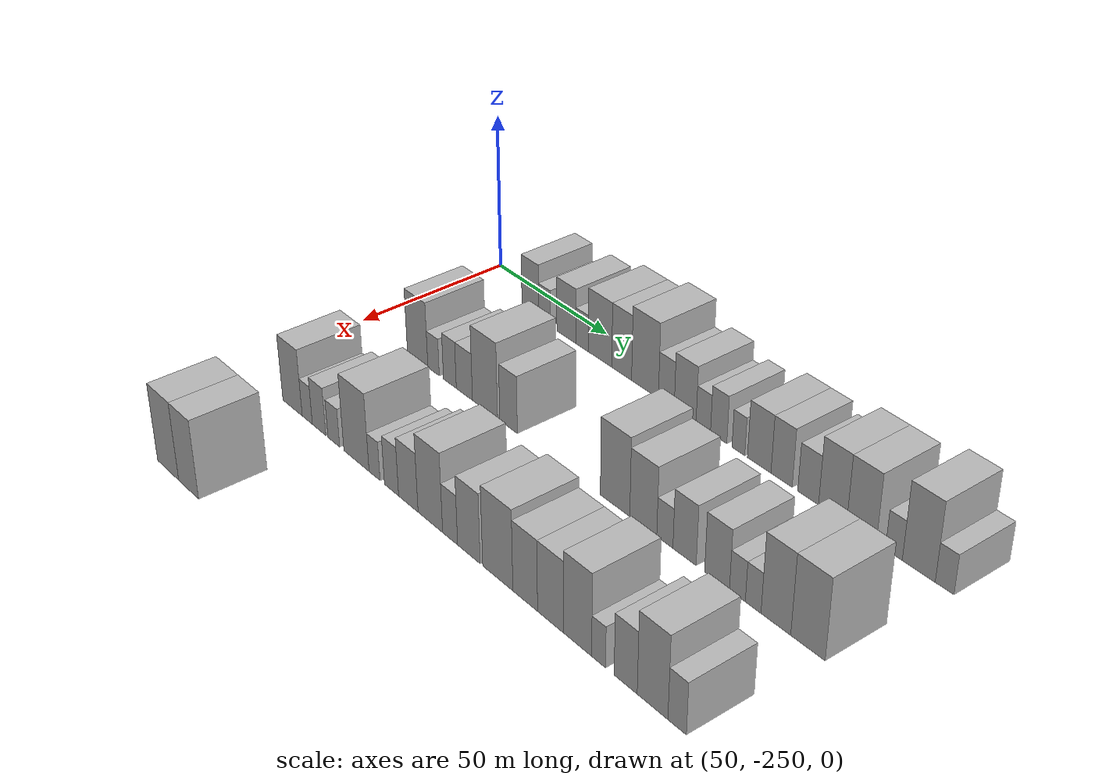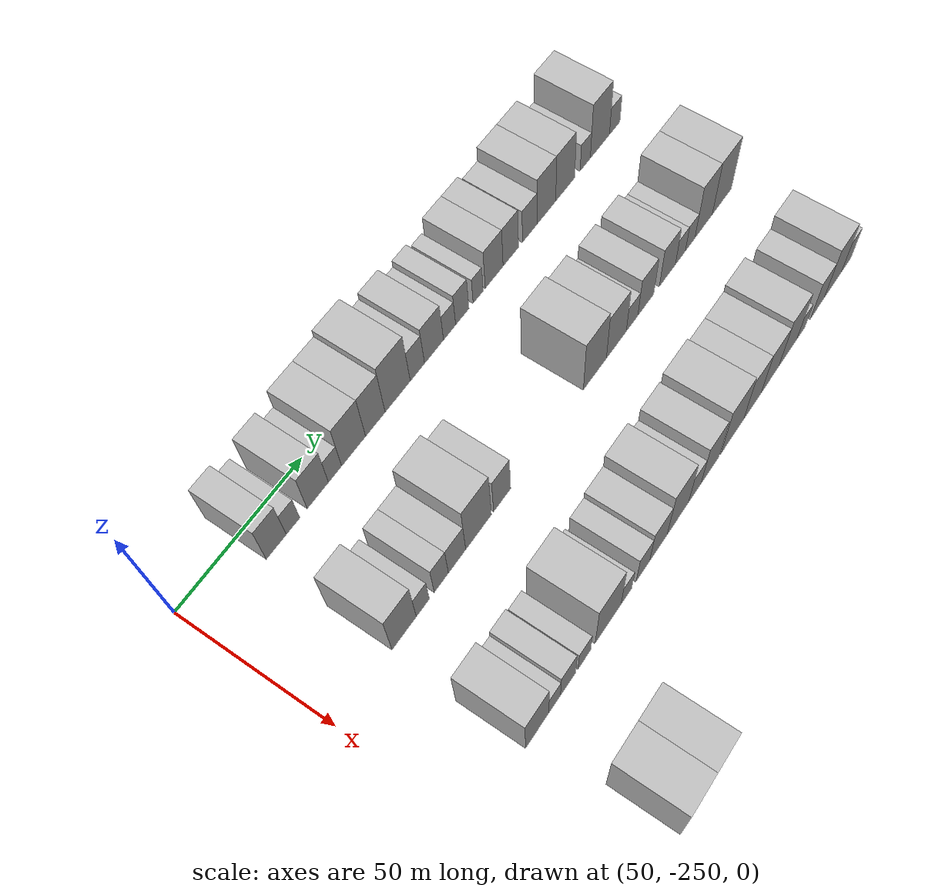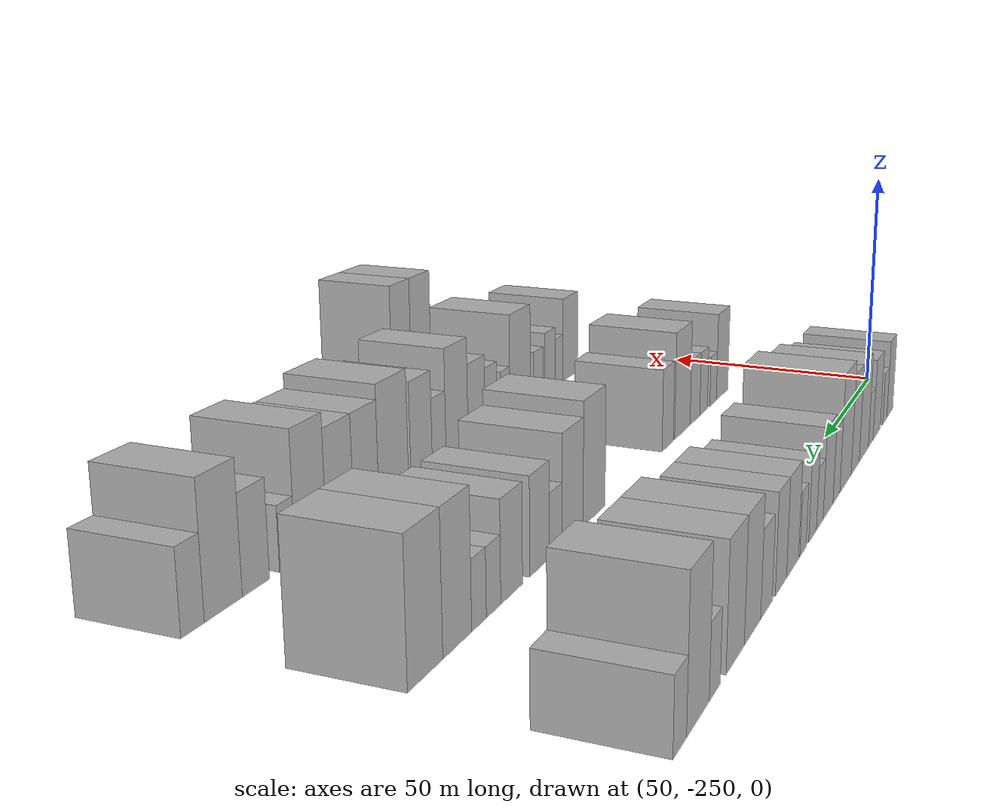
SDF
<sdf version="1.6">
 <world name="default">
  <model name="building_40">
   <static>1</static>
   <pose>50.0000 -222.8630 0 0.000000 0.000000 0.000000</pose>
   <link name="link">
    <pose>0 0 9.00 0 0 0</pose>
    <collision name="collision"><geometry><box><size>20.0000 7.9320 18.0000</size></box></geometry></collision>
    <visual name="visual">
     <cast_shadows>0</cast_shadows>
     <geometry><box><size>20.0000 7.9320 18.0000</size></box></geometry>
     <material>
      <script>
       <uri>model://HANNAS_wall/materials/scripts</uri>
       <uri>model://HANNAS_wall/materials/textures</uri>
       <name>vrc/HANNAS_wall</name>
      </script>
     </material>
    </visual>
   </link>
  </model>
  <model name="building_41">
   <static>1</static>
   <pose>50.0000 -216.1563 0 0.000000 0.000000 0.000000</pose>
   <link name="link">
    <pose>0 0 6.00 0 0 0</pose>
    <collision name="collision"><geometry><box><size>20.0000 5.4815 12.0000</size></box></geometry></collision>
    <visual name="visual">
     <cast_shadows>0</cast_shadows>
     <geometry><box><size>20.0000 5.4815 12.0000</size></box></geometry>
     <material>
      <script>
       <uri>model://HANNAS_wall/materials/scripts</uri>
       <uri>model://HANNAS_wall/materials/textures</uri>
       <name>vrc/HANNAS_wall</name>
      </script>
     </material>
    </visual>
   </link>
  </model>
  <model name="building_42">
   <static>1</static>
   <pose>50.0000 -206.0236 0 0.000000 0.000000 0.000000</pose>
   <link name="link">
    <pose>0 0 9.00 0 0 0</pose>
    <collision name="collision"><geometry><box><size>20.0000 8.7838 18.0000</size></box></geometry></collision>
    <visual name="visual">
     <cast_shadows>0</cast_shadows>
     <geometry><box><size>20.0000 8.7838 18.0000</size></box></geometry>
     <material>
      <script>
       <uri>model://HANNAS_wall/materials/scripts</uri>
       <uri>model://HANNAS_wall/materials/textures</uri>
       <name>vrc/HANNAS_wall</name>
      </script>
     </material>
    </visual>
   </link>
  </model>
  <model name="building_43">
   <static>1</static>
   <pose>50.0000 -198.8813 0 0.000000 0.000000 0.000000</pose>
   <link name="link">
    <pose>0 0 6.00 0 0 0</pose>
    <collision name="collision"><geometry><box><size>20.0000 5.5008 12.0000</size></box></geometry></collision>
    <visual name="visual">
     <cast_shadows>0</cast_shadows>
     <geometry><box><size>20.0000 5.5008 12.0000</size></box></geometry>
     <material>
      <script>
       <uri>model://HANNAS_wall/materials/scripts</uri>
       <uri>model://HANNAS_wall/materials/textures</uri>
       <name>vrc/HANNAS_wall</name>
      </script>
     </material>
    </visual>
   </link>
  </model>
  <model name="building_44">
   <static>1</static>
   <pose>50.0000 -190.9988 0 0.000000 0.000000 0.000000</pose>
   <link name="link">
    <pose>0 0 10.50 0 0 0</pose>
    <collision name="collision"><geometry><box><size>20.0000 10.2642 21.0000</size></box></geometry></collision>
    <visual name="visual">
     <cast_shadows>0</cast_shadows>
     <geometry><box><size>20.0000 10.2642 21.0000</size></box></geometry>
     <material>
      <script>
       <uri>model://HANNAS_wall/materials/scripts</uri>
       <uri>model://HANNAS_wall/materials/textures</uri>
       <name>vrc/HANNAS_wall</name>
      </script>
     </material>
    </visual>
   </link>
  </model>
  <model name="building_45">
   <static>1</static>
   <pose>50.0000 -181.6023 0 0.000000 0.000000 0.000000</pose>
   <link name="link">
    <pose>0 0 10.50 0 0 0</pose>
    <collision name="collision"><geometry><box><size>20.0000 8.5288 21.0000</size></box></geometry></collision>
    <visual name="visual">
     <cast_shadows>0</cast_shadows>
     <geometry><box><size>20.0000 8.5288 21.0000</size></box></geometry>
     <material>
      <script>
       <uri>model://HANNAS_wall/materials/scripts</uri>
       <uri>model://HANNAS_wall/materials/textures</uri>
       <name>vrc/HANNAS_wall</name>
      </script>
     </material>
    </visual>
   </link>
  </model>
  <model name="building_46">
   <static>1</static>
   <pose>50.0000 -171.7198 0 0.000000 0.000000 0.000000</pose>
   <link name="link">
    <pose>0 0 12.00 0 0 0</pose>
    <collision name="collision"><geometry><box><size>20.0000 11.2362 24.0000</size></box></geometry></collision>
    <visual name="visual">
     <cast_shadows>0</cast_shadows>
     <geometry><box><size>20.0000 11.2362 24.0000</size></box></geometry>
     <material>
      <script>
       <uri>model://HANNAS_wall/materials/scripts</uri>
       <uri>model://HANNAS_wall/materials/textures</uri>
       <name>vrc/HANNAS_wall</name>
      </script>
     </material>
    </visual>
   </link>
  </model>
  <model name="building_47">
   <static>1</static>
   <pose>50.0000 -162.8576 0 0.000000 0.000000 0.000000</pose>
   <link name="link">
    <pose>0 0 7.50 0 0 0</pose>
    <collision name="collision"><geometry><box><size>20.0000 6.4881 15.0000</size></box></geometry></collision>
    <visual name="visual">
     <cast_shadows>0</cast_shadows>
     <geometry><box><size>20.0000 6.4881 15.0000</size></box></geometry>
     <material>
      <script>
       <uri>model://HANNAS_wall/materials/scripts</uri>
       <uri>model://HANNAS_wall/materials/textures</uri>
       <name>vrc/HANNAS_wall</name>
      </script>
     </material>
    </visual>
   </link>
  </model>
  <model name="building_48">
   <static>1</static>
   <pose>50.0000 -155.2234 0 0.000000 0.000000 0.000000</pose>
   <link name="link">
    <pose>0 0 9.00 0 0 0</pose>
    <collision name="collision"><geometry><box><size>20.0000 8.7803 18.0000</size></box></geometry></collision>
    <visual name="visual">
     <cast_shadows>0</cast_shadows>
     <geometry><box><size>20.0000 8.7803 18.0000</size></box></geometry>
     <material>
      <script>
       <uri>model://HANNAS_wall/materials/scripts</uri>
       <uri>model://HANNAS_wall/materials/textures</uri>
       <name>vrc/HANNAS_wall</name>
      </script>
     </material>
    </visual>
   </link>
  </model>
  <model name="building_49">
   <static>1</static>
   <pose>50.0000 -147.9795 0 0.000000 0.000000 0.000000</pose>
   <link name="link">
    <pose>0 0 6.00 0 0 0</pose>
    <collision name="collision"><geometry><box><size>20.0000 5.7076 12.0000</size></box></geometry></collision>
    <visual name="visual">
     <cast_shadows>0</cast_shadows>
     <geometry><box><size>20.0000 5.7076 12.0000</size></box></geometry>
     <material>
      <script>
       <uri>model://HANNAS_wall/materials/scripts</uri>
       <uri>model://HANNAS_wall/materials/textures</uri>
       <name>vrc/HANNAS_wall</name>
      </script>
     </material>
    </visual>
   </link>
  </model>
  <model name="building_50">
   <static>1</static>
   <pose>50.0000 -141.9601 0 0.000000 0.000000 0.000000</pose>
   <link name="link">
    <pose>0 0 7.50 0 0 0</pose>
    <collision name="collision"><geometry><box><size>20.0000 6.3311 15.0000</size></box></geometry></collision>
    <visual name="visual">
     <cast_shadows>0</cast_shadows>
     <geometry><box><size>20.0000 6.3311 15.0000</size></box></geometry>
     <material>
      <script>
       <uri>model://HANNAS_wall/materials/scripts</uri>
       <uri>model://HANNAS_wall/materials/textures</uri>
       <name>vrc/HANNAS_wall</name>
      </script>
     </material>
    </visual>
   </link>
  </model>
  <model name="building_51">
   <static>1</static>
   <pose>50.0000 -134.3684 0 0.000000 0.000000 0.000000</pose>
   <link name="link">
    <pose>0 0 6.00 0 0 0</pose>
    <collision name="collision"><geometry><box><size>20.0000 4.8523 12.0000</size></box></geometry></collision>
    <visual name="visual">
     <cast_shadows>0</cast_shadows>
     <geometry><box><size>20.0000 4.8523 12.0000</size></box></geometry>
     <material>
      <script>
       <uri>model://HANNAS_wall/materials/scripts</uri>
       <uri>model://HANNAS_wall/materials/textures</uri>
       <name>vrc/HANNAS_wall</name>
      </script>
     </material>
    </visual>
   </link>
  </model>
  <model name="building_52">
   <static>1</static>
   <pose>50.0000 -126.5529 0 0.000000 0.000000 0.000000</pose>
   <link name="link">
    <pose>0 0 9.00 0 0 0</pose>
    <collision name="collision"><geometry><box><size>20.0000 8.7786 18.0000</size></box></geometry></collision>
    <visual name="visual">
     <cast_shadows>0</cast_shadows>
     <geometry><box><size>20.0000 8.7786 18.0000</size></box></geometry>
     <material>
      <script>
       <uri>model://HANNAS_wall/materials/scripts</uri>
       <uri>model://HANNAS_wall/materials/textures</uri>
       <name>vrc/HANNAS_wall</name>
      </script>
     </material>
    </visual>
   </link>
  </model>
  <model name="building_53">
   <static>1</static>
   <pose>50.0000 -118.3003 0 0.000000 0.000000 0.000000</pose>
   <link name="link">
    <pose>0 0 9.00 0 0 0</pose>
    <collision name="collision"><geometry><box><size>20.0000 7.7267 18.0000</size></box></geometry></collision>
    <visual name="visual">
     <cast_shadows>0</cast_shadows>
     <geometry><box><size>20.0000 7.7267 18.0000</size></box></geometry>
     <material>
      <script>
       <uri>model://HANNAS_wall/materials/scripts</uri>
       <uri>model://HANNAS_wall/materials/textures</uri>
       <name>vrc/HANNAS_wall</name>
      </script>
     </material>
    </visual>
   </link>
  </model>
  <model name="building_54">
   <static>1</static>
   <pose>50.0000 -108.7481 0 0.000000 0.000000 0.000000</pose>
   <link name="link">
    <pose>0 0 7.50 0 0 0</pose>
    <collision name="collision"><geometry><box><size>20.0000 7.3778 15.0000</size></box></geometry></collision>
    <visual name="visual">
     <cast_shadows>0</cast_shadows>
     <geometry><box><size>20.0000 7.3778 15.0000</size></box></geometry>
     <material>
      <script>
       <uri>model://HANNAS_wall/materials/scripts</uri>
       <uri>model://HANNAS_wall/materials/textures</uri>
       <name>vrc/HANNAS_wall</name>
      </script>
     </material>
    </visual>
   </link>
  </model>
  <model name="building_55">
   <static>1</static>
   <pose>50.0000 -100.1763 0 0.000000 0.000000 0.000000</pose>
   <link name="link">
    <pose>0 0 10.50 0 0 0</pose>
    <collision name="collision"><geometry><box><size>20.0000 9.7657 21.0000</size></box></geometry></collision>
    <visual name="visual">
     <cast_shadows>0</cast_shadows>
     <geometry><box><size>20.0000 9.7657 21.0000</size></box></geometry>
     <material>
      <script>
       <uri>model://HANNAS_wall/materials/scripts</uri>
       <uri>model://HANNAS_wall/materials/textures</uri>
       <name>vrc/HANNAS_wall</name>
      </script>
     </material>
    </visual>
   </link>
  </model>
  <model name="building_56">
   <static>1</static>
   <pose>50.0000 -90.2900 0 0.000000 0.000000 0.000000</pose>
   <link name="link">
    <pose>0 0 10.50 0 0 0</pose>
    <collision name="collision"><geometry><box><size>20.0000 10.0070 21.0000</size></box></geometry></collision>
    <visual name="visual">
     <cast_shadows>0</cast_shadows>
     <geometry><box><size>20.0000 10.0070 21.0000</size></box></geometry>
     <material>
      <script>
       <uri>model://HANNAS_wall/materials/scripts</uri>
       <uri>model://HANNAS_wall/materials/textures</uri>
       <name>vrc/HANNAS_wall</name>
      </script>
     </material>
    </visual>
   </link>
  </model>
  <model name="building_57">
   <static>1</static>
   <pose>50.0000 -79.5370 0 0.000000 0.000000 0.000000</pose>
   <link name="link">
    <pose>0 0 6.00 0 0 0</pose>
    <collision name="collision"><geometry><box><size>20.0000 5.4991 12.0000</size></box></geometry></collision>
    <visual name="visual">
     <cast_shadows>0</cast_shadows>
     <geometry><box><size>20.0000 5.4991 12.0000</size></box></geometry>
     <material>
      <script>
       <uri>model://HANNAS_wall/materials/scripts</uri>
       <uri>model://HANNAS_wall/materials/textures</uri>
       <name>vrc/HANNAS_wall</name>
      </script>
     </material>
    </visual>
   </link>
  </model>
  <model name="building_58">
   <static>1</static>
   <pose>50.0000 -71.5203 0 0.000000 0.000000 0.000000</pose>
   <link name="link">
    <pose>0 0 12.00 0 0 0</pose>
    <collision name="collision"><geometry><box><size>20.0000 10.5342 24.0000</size></box></geometry></collision>
    <visual name="visual">
     <cast_shadows>0</cast_shadows>
     <geometry><box><size>20.0000 10.5342 24.0000</size></box></geometry>
     <material>
      <script>
       <uri>model://HANNAS_wall/materials/scripts</uri>
       <uri>model://HANNAS_wall/materials/textures</uri>
       <name>vrc/HANNAS_wall</name>
      </script>
     </material>
    </visual>
   </link>
  </model>
  <model name="building_59">
   <static>1</static>
   <pose>50.0000 -63.3227 0 0.000000 0.000000 0.000000</pose>
   <link name="link">
    <pose>0 0 6.00 0 0 0</pose>
    <collision name="collision"><geometry><box><size>20.0000 5.8610 12.0000</size></box></geometry></collision>
    <visual name="visual">
     <cast_shadows>0</cast_shadows>
     <geometry><box><size>20.0000 5.8610 12.0000</size></box></geometry>
     <material>
      <script>
       <uri>model://HANNAS_wall/materials/scripts</uri>
       <uri>model://HANNAS_wall/materials/textures</uri>
       <name>vrc/HANNAS_wall</name>
      </script>
     </material>
    </visual>
   </link>
  </model>
  <model name="building_187">
   <static>1</static>
   <pose>90.0000 -222.9014 0 0.000000 0.000000 0.000000</pose>
   <link name="link">
    <pose>0 0 10.50 0 0 0</pose>
    <collision name="collision"><geometry><box><size>20.0000 9.9469 21.0000</size></box></geometry></collision>
    <visual name="visual">
     <cast_shadows>0</cast_shadows>
     <geometry><box><size>20.0000 9.9469 21.0000</size></box></geometry>
     <material>
      <script>
       <uri>model://HANNAS_wall/materials/scripts</uri>
       <uri>model://HANNAS_wall/materials/textures</uri>
       <name>vrc/HANNAS_wall</name>
      </script>
     </material>
    </visual>
   </link>
  </model>
  <model name="building_188">
   <static>1</static>
   <pose>90.0000 -215.1962 0 0.000000 0.000000 0.000000</pose>
   <link name="link">
    <pose>0 0 6.00 0 0 0</pose>
    <collision name="collision"><geometry><box><size>20.0000 5.4635 12.0000</size></box></geometry></collision>
    <visual name="visual">
     <cast_shadows>0</cast_shadows>
     <geometry><box><size>20.0000 5.4635 12.0000</size></box></geometry>
     <material>
      <script>
       <uri>model://HANNAS_wall/materials/scripts</uri>
       <uri>model://HANNAS_wall/materials/textures</uri>
       <name>vrc/HANNAS_wall</name>
      </script>
     </material>
    </visual>
   </link>
  </model>
  <model name="building_189">
   <static>1</static>
   <pose>90.0000 -207.4547 0 0.000000 0.000000 0.000000</pose>
   <link name="link">
    <pose>0 0 7.50 0 0 0</pose>
    <collision name="collision"><geometry><box><size>20.0000 6.0195 15.0000</size></box></geometry></collision>
    <visual name="visual">
     <cast_shadows>0</cast_shadows>
     <geometry><box><size>20.0000 6.0195 15.0000</size></box></geometry>
     <material>
      <script>
       <uri>model://HANNAS_wall/materials/scripts</uri>
       <uri>model://HANNAS_wall/materials/textures</uri>
       <name>vrc/HANNAS_wall</name>
      </script>
     </material>
    </visual>
   </link>
  </model>
  <model name="building_190">
   <static>1</static>
   <pose>90.0000 -200.7023 0 0.000000 0.000000 0.000000</pose>
   <link name="link">
    <pose>0 0 7.50 0 0 0</pose>
    <collision name="collision"><geometry><box><size>20.0000 7.4853 15.0000</size></box></geometry></collision>
    <visual name="visual">
     <cast_shadows>0</cast_shadows>
     <geometry><box><size>20.0000 7.4853 15.0000</size></box></geometry>
     <material>
      <script>
       <uri>model://HANNAS_wall/materials/scripts</uri>
       <uri>model://HANNAS_wall/materials/textures</uri>
       <name>vrc/HANNAS_wall</name>
      </script>
     </material>
    </visual>
   </link>
  </model>
  <model name="building_191">
   <static>1</static>
   <pose>90.0000 -191.3024 0 0.000000 0.000000 0.000000</pose>
   <link name="link">
    <pose>0 0 12.00 0 0 0</pose>
    <collision name="collision"><geometry><box><size>20.0000 11.3145 24.0000</size></box></geometry></collision>
    <visual name="visual">
     <cast_shadows>0</cast_shadows>
     <geometry><box><size>20.0000 11.3145 24.0000</size></box></geometry>
     <material>
      <script>
       <uri>model://HANNAS_wall/materials/scripts</uri>
       <uri>model://HANNAS_wall/materials/textures</uri>
       <name>vrc/HANNAS_wall</name>
      </script>
     </material>
    </visual>
   </link>
  </model>
  <model name="building_192">
   <static>1</static>
   <pose>90.0000 -180.8074 0 0.000000 0.000000 0.000000</pose>
   <link name="link">
    <pose>0 0 9.00 0 0 0</pose>
    <collision name="collision"><geometry><box><size>20.0000 7.6755 18.0000</size></box></geometry></collision>
    <visual name="visual">
     <cast_shadows>0</cast_shadows>
     <geometry><box><size>20.0000 7.6755 18.0000</size></box></geometry>
     <material>
      <script>
       <uri>model://HANNAS_wall/materials/scripts</uri>
       <uri>model://HANNAS_wall/materials/textures</uri>
       <name>vrc/HANNAS_wall</name>
      </script>
     </material>
    </visual>
   </link>
  </model>
  <model name="building_193">
   <static>1</static>
   <pose>90.0000 -136.7988 0 0.000000 0.000000 0.000000</pose>
   <link name="link">
    <pose>0 0 12.00 0 0 0</pose>
    <collision name="collision"><geometry><box><size>20.0000 11.4472 24.0000</size></box></geometry></collision>
    <visual name="visual">
     <cast_shadows>0</cast_shadows>
     <geometry><box><size>20.0000 11.4472 24.0000</size></box></geometry>
     <material>
      <script>
       <uri>model://HANNAS_wall/materials/scripts</uri>
       <uri>model://HANNAS_wall/materials/textures</uri>
       <name>vrc/HANNAS_wall</name>
      </script>
     </material>
    </visual>
   </link>
  </model>
  <model name="building_194">
   <static>1</static>
   <pose>90.0000 -125.9730 0 0.000000 0.000000 0.000000</pose>
   <link name="link">
    <pose>0 0 10.50 0 0 0</pose>
    <collision name="collision"><geometry><box><size>20.0000 10.2042 21.0000</size></box></geometry></collision>
    <visual name="visual">
     <cast_shadows>0</cast_shadows>
     <geometry><box><size>20.0000 10.2042 21.0000</size></box></geometry>
     <material>
      <script>
       <uri>model://HANNAS_wall/materials/scripts</uri>
       <uri>model://HANNAS_wall/materials/textures</uri>
       <name>vrc/HANNAS_wall</name>
      </script>
     </material>
    </visual>
   </link>
  </model>
  <model name="building_195">
   <static>1</static>
   <pose>90.0000 -117.8890 0 0.000000 0.000000 0.000000</pose>
   <link name="link">
    <pose>0 0 6.00 0 0 0</pose>
    <collision name="collision"><geometry><box><size>20.0000 5.9638 12.0000</size></box></geometry></collision>
    <visual name="visual">
     <cast_shadows>0</cast_shadows>
     <geometry><box><size>20.0000 5.9638 12.0000</size></box></geometry>
     <material>
      <script>
       <uri>model://HANNAS_wall/materials/scripts</uri>
       <uri>model://HANNAS_wall/materials/textures</uri>
       <name>vrc/HANNAS_wall</name>
      </script>
     </material>
    </visual>
   </link>
  </model>
  <model name="building_196">
   <static>1</static>
   <pose>90.0000 -110.6893 0 0.000000 0.000000 0.000000</pose>
   <link name="link">
    <pose>0 0 9.00 0 0 0</pose>
    <collision name="collision"><geometry><box><size>20.0000 8.4355 18.0000</size></box></geometry></collision>
    <visual name="visual">
     <cast_shadows>0</cast_shadows>
     <geometry><box><size>20.0000 8.4355 18.0000</size></box></geometry>
     <material>
      <script>
       <uri>model://HANNAS_wall/materials/scripts</uri>
       <uri>model://HANNAS_wall/materials/textures</uri>
       <name>vrc/HANNAS_wall</name>
      </script>
     </material>
    </visual>
   </link>
  </model>
  <model name="building_197">
   <static>1</static>
   <pose>90.0000 -99.1332 0 0.000000 0.000000 0.000000</pose>
   <link name="link">
    <pose>0 0 9.00 0 0 0</pose>
    <collision name="collision"><geometry><box><size>20.0000 8.6768 18.0000</size></box></geometry></collision>
    <visual name="visual">
     <cast_shadows>0</cast_shadows>
     <geometry><box><size>20.0000 8.6768 18.0000</size></box></geometry>
     <material>
      <script>
       <uri>model://HANNAS_wall/materials/scripts</uri>
       <uri>model://HANNAS_wall/materials/textures</uri>
       <name>vrc/HANNAS_wall</name>
      </script>
     </material>
    </visual>
   </link>
  </model>
  <model name="building_198">
   <static>1</static>
   <pose>90.0000 -92.0664 0 0.000000 0.000000 0.000000</pose>
   <link name="link">
    <pose>0 0 6.00 0 0 0</pose>
    <collision name="collision"><geometry><box><size>20.0000 5.4568 12.0000</size></box></geometry></collision>
    <visual name="visual">
     <cast_shadows>0</cast_shadows>
     <geometry><box><size>20.0000 5.4568 12.0000</size></box></geometry>
     <material>
      <script>
       <uri>model://HANNAS_wall/materials/scripts</uri>
       <uri>model://HANNAS_wall/materials/textures</uri>
       <name>vrc/HANNAS_wall</name>
      </script>
     </material>
    </visual>
   </link>
  </model>
  <model name="building_199">
   <static>1</static>
   <pose>90.0000 -86.6915 0 0.000000 0.000000 0.000000</pose>
   <link name="link">
    <pose>0 0 6.00 0 0 0</pose>
    <collision name="collision"><geometry><box><size>20.0000 5.2930 12.0000</size></box></geometry></collision>
    <visual name="visual">
     <cast_shadows>0</cast_shadows>
     <geometry><box><size>20.0000 5.2930 12.0000</size></box></geometry>
     <material>
      <script>
       <uri>model://HANNAS_wall/materials/scripts</uri>
       <uri>model://HANNAS_wall/materials/textures</uri>
       <name>vrc/HANNAS_wall</name>
      </script>
     </material>
    </visual>
   </link>
  </model>
  <model name="building_200">
   <static>1</static>
   <pose>90.0000 -79.1349 0 0.000000 0.000000 0.000000</pose>
   <link name="link">
    <pose>0 0 12.00 0 0 0</pose>
    <collision name="collision"><geometry><box><size>20.0000 9.8201 24.0000</size></box></geometry></collision>
    <visual name="visual">
     <cast_shadows>0</cast_shadows>
     <geometry><box><size>20.0000 9.8201 24.0000</size></box></geometry>
     <material>
      <script>
       <uri>model://HANNAS_wall/materials/scripts</uri>
       <uri>model://HANNAS_wall/materials/textures</uri>
       <name>vrc/HANNAS_wall</name>
      </script>
     </material>
    </visual>
   </link>
  </model>
  <model name="building_201">
   <static>1</static>
   <pose>90.0000 -68.7197 0 0.000000 0.000000 0.000000</pose>
   <link name="link">
    <pose>0 0 12.00 0 0 0</pose>
    <collision name="collision"><geometry><box><size>20.0000 11.0104 24.0000</size></box></geometry></collision>
    <visual name="visual">
     <cast_shadows>0</cast_shadows>
     <geometry><box><size>20.0000 11.0104 24.0000</size></box></geometry>
     <material>
      <script>
       <uri>model://HANNAS_wall/materials/scripts</uri>
       <uri>model://HANNAS_wall/materials/textures</uri>
       <name>vrc/HANNAS_wall</name>
      </script>
     </material>
    </visual>
   </link>
  </model>
  <model name="building_316">
   <static>1</static>
   <pose>130.0000 -224.4772 0 0.000000 0.000000 0.000000</pose>
   <link name="link">
    <pose>0 0 10.50 0 0 0</pose>
    <collision name="collision"><geometry><box><size>20.0000 9.7715 21.0000</size></box></geometry></collision>
    <visual name="visual">
     <cast_shadows>0</cast_shadows>
     <geometry><box><size>20.0000 9.7715 21.0000</size></box></geometry>
     <material>
      <script>
       <uri>model://HANNAS_wall/materials/scripts</uri>
       <uri>model://HANNAS_wall/materials/textures</uri>
       <name>vrc/HANNAS_wall</name>
      </script>
     </material>
    </visual>
   </link>
  </model>
  <model name="building_317">
   <static>1</static>
   <pose>130.0000 -217.0704 0 0.000000 0.000000 0.000000</pose>
   <link name="link">
    <pose>0 0 6.00 0 0 0</pose>
    <collision name="collision"><geometry><box><size>20.0000 5.0422 12.0000</size></box></geometry></collision>
    <visual name="visual">
     <cast_shadows>0</cast_shadows>
     <geometry><box><size>20.0000 5.0422 12.0000</size></box></geometry>
     <material>
      <script>
       <uri>model://HANNAS_wall/materials/scripts</uri>
       <uri>model://HANNAS_wall/materials/textures</uri>
       <name>vrc/HANNAS_wall</name>
      </script>
     </material>
    </visual>
   </link>
  </model>
  <model name="building_318">
   <static>1</static>
   <pose>130.0000 -211.2280 0 0.000000 0.000000 0.000000</pose>
   <link name="link">
    <pose>0 0 7.50 0 0 0</pose>
    <collision name="collision"><geometry><box><size>20.0000 6.6426 15.0000</size></box></geometry></collision>
    <visual name="visual">
     <cast_shadows>0</cast_shadows>
     <geometry><box><size>20.0000 6.6426 15.0000</size></box></geometry>
     <material>
      <script>
       <uri>model://HANNAS_wall/materials/scripts</uri>
       <uri>model://HANNAS_wall/materials/textures</uri>
       <name>vrc/HANNAS_wall</name>
      </script>
     </material>
    </visual>
   </link>
  </model>
  <model name="building_319">
   <static>1</static>
   <pose>130.0000 -204.0711 0 0.000000 0.000000 0.000000</pose>
   <link name="link">
    <pose>0 0 6.00 0 0 0</pose>
    <collision name="collision"><geometry><box><size>20.0000 5.6711 12.0000</size></box></geometry></collision>
    <visual name="visual">
     <cast_shadows>0</cast_shadows>
     <geometry><box><size>20.0000 5.6711 12.0000</size></box></geometry>
     <material>
      <script>
       <uri>model://HANNAS_wall/materials/scripts</uri>
       <uri>model://HANNAS_wall/materials/textures</uri>
       <name>vrc/HANNAS_wall</name>
      </script>
     </material>
    </visual>
   </link>
  </model>
  <model name="building_320">
   <static>1</static>
   <pose>130.0000 -193.3416 0 0.000000 0.000000 0.000000</pose>
   <link name="link">
    <pose>0 0 12.00 0 0 0</pose>
    <collision name="collision"><geometry><box><size>20.0000 11.7881 24.0000</size></box></geometry></collision>
    <visual name="visual">
     <cast_shadows>0</cast_shadows>
     <geometry><box><size>20.0000 11.7881 24.0000</size></box></geometry>
     <material>
      <script>
       <uri>model://HANNAS_wall/materials/scripts</uri>
       <uri>model://HANNAS_wall/materials/textures</uri>
       <name>vrc/HANNAS_wall</name>
      </script>
     </material>
    </visual>
   </link>
  </model>
  <model name="building_321">
   <static>1</static>
   <pose>130.0000 -184.9267 0 0.000000 0.000000 0.000000</pose>
   <link name="link">
    <pose>0 0 6.00 0 0 0</pose>
    <collision name="collision"><geometry><box><size>20.0000 5.0417 12.0000</size></box></geometry></collision>
    <visual name="visual">
     <cast_shadows>0</cast_shadows>
     <geometry><box><size>20.0000 5.0417 12.0000</size></box></geometry>
     <material>
      <script>
       <uri>model://HANNAS_wall/materials/scripts</uri>
       <uri>model://HANNAS_wall/materials/textures</uri>
       <name>vrc/HANNAS_wall</name>
      </script>
     </material>
    </visual>
   </link>
  </model>
  <model name="building_322">
   <static>1</static>
   <pose>130.0000 -177.2299 0 0.000000 0.000000 0.000000</pose>
   <link name="link">
    <pose>0 0 7.50 0 0 0</pose>
    <collision name="collision"><geometry><box><size>20.0000 6.3518 15.0000</size></box></geometry></collision>
    <visual name="visual">
     <cast_shadows>0</cast_shadows>
     <geometry><box><size>20.0000 6.3518 15.0000</size></box></geometry>
     <material>
      <script>
       <uri>model://HANNAS_wall/materials/scripts</uri>
       <uri>model://HANNAS_wall/materials/textures</uri>
       <name>vrc/HANNAS_wall</name>
      </script>
     </material>
    </visual>
   </link>
  </model>
  <model name="building_323">
   <static>1</static>
   <pose>130.0000 -169.7824 0 0.000000 0.000000 0.000000</pose>
   <link name="link">
    <pose>0 0 9.00 0 0 0</pose>
    <collision name="collision"><geometry><box><size>20.0000 8.5433 18.0000</size></box></geometry></collision>
    <visual name="visual">
     <cast_shadows>0</cast_shadows>
     <geometry><box><size>20.0000 8.5433 18.0000</size></box></geometry>
     <material>
      <script>
       <uri>model://HANNAS_wall/materials/scripts</uri>
       <uri>model://HANNAS_wall/materials/textures</uri>
       <name>vrc/HANNAS_wall</name>
      </script>
     </material>
    </visual>
   </link>
  </model>
  <model name="building_324">
   <static>1</static>
   <pose>130.0000 -160.2518 0 0.000000 0.000000 0.000000</pose>
   <link name="link">
    <pose>0 0 12.00 0 0 0</pose>
    <collision name="collision"><geometry><box><size>20.0000 10.5179 24.0000</size></box></geometry></collision>
    <visual name="visual">
     <cast_shadows>0</cast_shadows>
     <geometry><box><size>20.0000 10.5179 24.0000</size></box></geometry>
     <material>
      <script>
       <uri>model://HANNAS_wall/materials/scripts</uri>
       <uri>model://HANNAS_wall/materials/textures</uri>
       <name>vrc/HANNAS_wall</name>
      </script>
     </material>
    </visual>
   </link>
  </model>
  <model name="building_325">
   <static>1</static>
   <pose>130.0000 -151.8718 0 0.000000 0.000000 0.000000</pose>
   <link name="link">
    <pose>0 0 7.50 0 0 0</pose>
    <collision name="collision"><geometry><box><size>20.0000 6.2420 15.0000</size></box></geometry></collision>
    <visual name="visual">
     <cast_shadows>0</cast_shadows>
     <geometry><box><size>20.0000 6.2420 15.0000</size></box></geometry>
     <material>
      <script>
       <uri>model://HANNAS_wall/materials/scripts</uri>
       <uri>model://HANNAS_wall/materials/textures</uri>
       <name>vrc/HANNAS_wall</name>
      </script>
     </material>
    </visual>
   </link>
  </model>
  <model name="building_326">
   <static>1</static>
   <pose>130.0000 -144.1343 0 0.000000 0.000000 0.000000</pose>
   <link name="link">
    <pose>0 0 10.50 0 0 0</pose>
    <collision name="collision"><geometry><box><size>20.0000 9.2330 21.0000</size></box></geometry></collision>
    <visual name="visual">
     <cast_shadows>0</cast_shadows>
     <geometry><box><size>20.0000 9.2330 21.0000</size></box></geometry>
     <material>
      <script>
       <uri>model://HANNAS_wall/materials/scripts</uri>
       <uri>model://HANNAS_wall/materials/textures</uri>
       <name>vrc/HANNAS_wall</name>
      </script>
     </material>
    </visual>
   </link>
  </model>
  <model name="building_327">
   <static>1</static>
   <pose>130.0000 -132.5599 0 0.000000 0.000000 0.000000</pose>
   <link name="link">
    <pose>0 0 12.00 0 0 0</pose>
    <collision name="collision"><geometry><box><size>20.0000 11.9157 24.0000</size></box></geometry></collision>
    <visual name="visual">
     <cast_shadows>0</cast_shadows>
     <geometry><box><size>20.0000 11.9157 24.0000</size></box></geometry>
     <material>
      <script>
       <uri>model://HANNAS_wall/materials/scripts</uri>
       <uri>model://HANNAS_wall/materials/textures</uri>
       <name>vrc/HANNAS_wall</name>
      </script>
     </material>
    </visual>
   </link>
  </model>
  <model name="building_328">
   <static>1</static>
   <pose>130.0000 -121.8762 0 0.000000 0.000000 0.000000</pose>
   <link name="link">
    <pose>0 0 10.50 0 0 0</pose>
    <collision name="collision"><geometry><box><size>20.0000 9.4518 21.0000</size></box></geometry></collision>
    <visual name="visual">
     <cast_shadows>0</cast_shadows>
     <geometry><box><size>20.0000 9.4518 21.0000</size></box></geometry>
     <material>
      <script>
       <uri>model://HANNAS_wall/materials/scripts</uri>
       <uri>model://HANNAS_wall/materials/textures</uri>
       <name>vrc/HANNAS_wall</name>
      </script>
     </material>
    </visual>
   </link>
  </model>
  <model name="building_329">
   <static>1</static>
   <pose>130.0000 -112.3474 0 0.000000 0.000000 0.000000</pose>
   <link name="link">
    <pose>0 0 10.50 0 0 0</pose>
    <collision name="collision"><geometry><box><size>20.0000 9.6057 21.0000</size></box></geometry></collision>
    <visual name="visual">
     <cast_shadows>0</cast_shadows>
     <geometry><box><size>20.0000 9.6057 21.0000</size></box></geometry>
     <material>
      <script>
       <uri>model://HANNAS_wall/materials/scripts</uri>
       <uri>model://HANNAS_wall/materials/textures</uri>
       <name>vrc/HANNAS_wall</name>
      </script>
     </material>
    </visual>
   </link>
  </model>
  <model name="building_330">
   <static>1</static>
   <pose>130.0000 -102.4316 0 0.000000 0.000000 0.000000</pose>
   <link name="link">
    <pose>0 0 12.00 0 0 0</pose>
    <collision name="collision"><geometry><box><size>20.0000 10.2258 24.0000</size></box></geometry></collision>
    <visual name="visual">
     <cast_shadows>0</cast_shadows>
     <geometry><box><size>20.0000 10.2258 24.0000</size></box></geometry>
     <material>
      <script>
       <uri>model://HANNAS_wall/materials/scripts</uri>
       <uri>model://HANNAS_wall/materials/textures</uri>
       <name>vrc/HANNAS_wall</name>
      </script>
     </material>
    </visual>
   </link>
  </model>
  <model name="building_331">
   <static>1</static>
   <pose>130.0000 -94.8656 0 0.000000 0.000000 0.000000</pose>
   <link name="link">
    <pose>0 0 6.00 0 0 0</pose>
    <collision name="collision"><geometry><box><size>20.0000 4.9062 12.0000</size></box></geometry></collision>
    <visual name="visual">
     <cast_shadows>0</cast_shadows>
     <geometry><box><size>20.0000 4.9062 12.0000</size></box></geometry>
     <material>
      <script>
       <uri>model://HANNAS_wall/materials/scripts</uri>
       <uri>model://HANNAS_wall/materials/textures</uri>
       <name>vrc/HANNAS_wall</name>
      </script>
     </material>
    </visual>
   </link>
  </model>
  <model name="building_332">
   <static>1</static>
   <pose>130.0000 -85.4718 0 0.000000 0.000000 0.000000</pose>
   <link name="link">
    <pose>0 0 9.00 0 0 0</pose>
    <collision name="collision"><geometry><box><size>20.0000 7.8814 18.0000</size></box></geometry></collision>
    <visual name="visual">
     <cast_shadows>0</cast_shadows>
     <geometry><box><size>20.0000 7.8814 18.0000</size></box></geometry>
     <material>
      <script>
       <uri>model://HANNAS_wall/materials/scripts</uri>
       <uri>model://HANNAS_wall/materials/textures</uri>
       <name>vrc/HANNAS_wall</name>
      </script>
     </material>
    </visual>
   </link>
  </model>
  <model name="building_333">
   <static>1</static>
   <pose>130.0000 -76.4172 0 0.000000 0.000000 0.000000</pose>
   <link name="link">
    <pose>0 0 12.00 0 0 0</pose>
    <collision name="collision"><geometry><box><size>20.0000 10.2279 24.0000</size></box></geometry></collision>
    <visual name="visual">
     <cast_shadows>0</cast_shadows>
     <geometry><box><size>20.0000 10.2279 24.0000</size></box></geometry>
     <material>
      <script>
       <uri>model://HANNAS_wall/materials/scripts</uri>
       <uri>model://HANNAS_wall/materials/textures</uri>
       <name>vrc/HANNAS_wall</name>
      </script>
     </material>
    </visual>
   </link>
  </model>
  <model name="building_334">
   <static>1</static>
   <pose>130.0000 -68.3030 0 0.000000 0.000000 0.000000</pose>
   <link name="link">
    <pose>0 0 7.50 0 0 0</pose>
    <collision name="collision"><geometry><box><size>20.0000 6.0005 15.0000</size></box></geometry></collision>
    <visual name="visual">
     <cast_shadows>0</cast_shadows>
     <geometry><box><size>20.0000 6.0005 15.0000</size></box></geometry>
     <material>
      <script>
       <uri>model://HANNAS_wall/materials/scripts</uri>
       <uri>model://HANNAS_wall/materials/textures</uri>
       <name>vrc/HANNAS_wall</name>
      </script>
     </material>
    </visual>
   </link>
  </model>
  <model name="building_457">
   <static>1</static>
   <pose>170.0000 -220.2752 0 0.000000 0.000000 0.000000</pose>
   <link name="link">
    <pose>0 0 12.00 0 0 0</pose>
    <collision name="collision"><geometry><box><size>20.0000 11.0657 24.0000</size></box></geometry></collision>
    <visual name="visual">
     <cast_shadows>0</cast_shadows>
     <geometry><box><size>20.0000 11.0657 24.0000</size></box></geometry>
     <material>
      <script>
       <uri>model://HANNAS_wall/materials/scripts</uri>
       <uri>model://HANNAS_wall/materials/textures</uri>
       <name>vrc/HANNAS_wall</name>
      </script>
     </material>
    </visual>
   </link>
  </model>
  <model name="building_458">
   <static>1</static>
   <pose>170.0000 -209.6518 0 0.000000 0.000000 0.000000</pose>
   <link name="link">
    <pose>0 0 12.00 0 0 0</pose>
    <collision name="collision"><geometry><box><size>20.0000 10.1810 24.0000</size></box></geometry></collision>
    <visual name="visual">
     <cast_shadows>0</cast_shadows>
     <geometry><box><size>20.0000 10.1810 24.0000</size></box></geometry>
     <material>
      <script>
       <uri>model://HANNAS_wall/materials/scripts</uri>
       <uri>model://HANNAS_wall/materials/textures</uri>
       <name>vrc/HANNAS_wall</name>
      </script>
     </material>
    </visual>
   </link>
  </model>
 </world>
</sdf>
